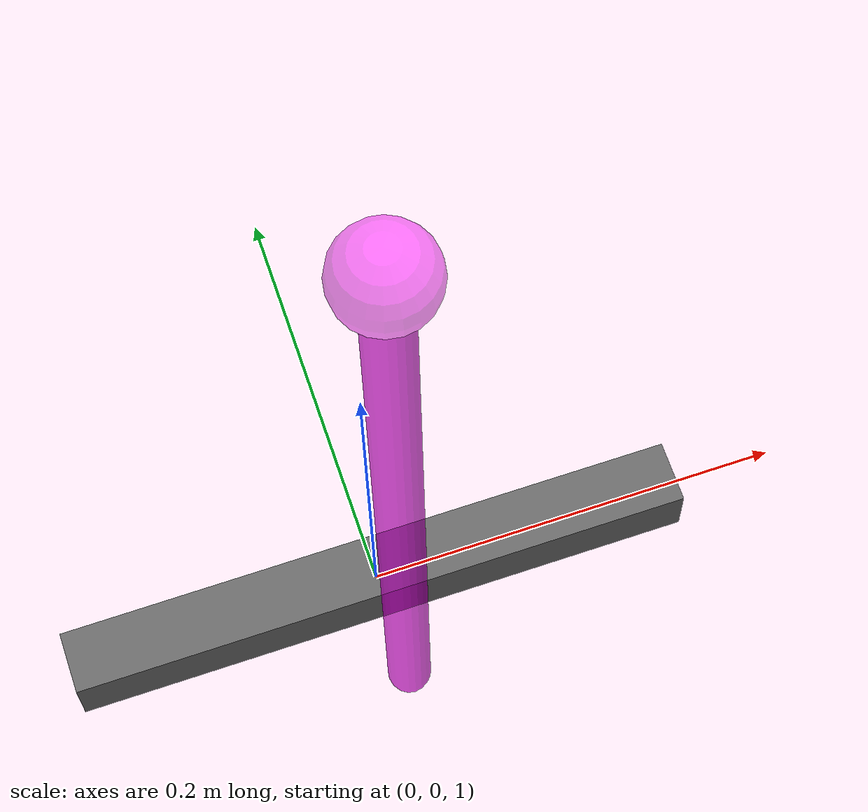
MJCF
<mujoco model="cartpole_sim_outer">
    <compiler inertiafromgeom="true" angle="degree"/>

    <asset>
      <texture type="skybox" builtin="gradient" rgb1=".0 .0 .0" rgb2="0. 0.0 .1" width="512" height="512"/>
      <texture name="body" type="cube" builtin="flat" mark="cross" width="127" height="1278"
               rgb1="0.4 0.4 0.4" rgb2="0.4 0.4 0.4" markrgb="0 0 0" random="0.01"/>
      <material name="body" texture="body" texuniform="true"/>
      <texture name="grid" type="2d" builtin="checker" width="512" height="512" rgb1=".6 .6 .6" rgb2=".9 .9 .9"/>
      <material name="grid" texture="grid" texrepeat="1 1" texuniform="true" reflectance=".2"/>
    </asset>

    <default>
        <joint limited="false" damping="1" armature="0"/>
        <geom type="capsule" condim="1" friction=".7" solimp=".9 .99 .003" solref=".015 1" material="body"/>
        <motor ctrlrange="-1. 1." ctrllimited="true"/>

        <default class="bearing">
            <joint pos="0 0 0" limited="false" damping="0.01" armature="0.01" type="hinge" axis="0 1 0"/>
            <geom pos="0 0 0" conaffinity="0" rgba="1 0 1 0.7" friction="0 0 0"/>
        </default>

        <default class="target_slider">
            <joint armature="10000" damping="10000" limited="true" pos="0 0 0" range="-1000 1000" ref=".1" stiffness="0" type="slide"/>
            <geom conaffinity="0" pos="0 0 0" rgba=" 1 0 1 0.5" size="0.005" type="sphere"/>
        </default>

    </default>

    <option timestep="0.005" iterations="50" tolerance="1e-10" solver="Newton" jacobian="dense" cone="pyramidal"/>

    <visual>
      <map force="0.1" zfar="30"/>
      <rgba haze="0.15 0.25 0.35 .1"/>
      <quality shadowsize="4096"/>
      <global offwidth="800" offheight="800"/>
    </visual>

    <worldbody>
        <geom name="floor" size="0 0 .05" type="plane" material="grid" condim="3"/>
        <light name="spotlight" mode="targetbodycom" target="torso"
               diffuse=".8 .8 .8" specular="0.3 0.3 0.3" pos="0 -20 4" cutoff="10"/>

        <light directional="false" diffuse=".2 .2 .2" specular="0 0 0" pos="0 0 5" dir="0 0 -1" castshadow="false"/>
        <light mode="targetbodycom" target="torso" directional="false" diffuse=".8 .8 .8" specular="0.3 0.3 0.3" pos="0 0 4.0" dir="0 0 -1"/>

        <body name="torso" pos="0 0 1.">
            <camera name="trackhorizontal" mode="trackcom" pos="0 -3 0.3" xyaxes="1 0 0 0 0 1"/>
            <joint type="slide" axis="1 0 0" name="cart" damping="10" armature="0.1" limited="false" range="-5 5"/>
            <geom type="box" size="0.15 0.015 0.015"/>
            <body name="lwaist" pos="0 -0.05 0">
                    <joint class="bearing" pos="0 0 0" axis="0 1 0" name="pole" limited="false" range="-45 45"/>
                    <geom class="bearing" pos="0 0 0.2" size="0.01 0.2" type="capsule" rgba="1 0 1 0.7" />
                    <body name="ball" pos="0 0 0.4">
                        <joint class="target_slider" axis="1 0 0" name="target_x"/>
                        <geom class="target_slider" name="target" size="0.02"/>
                        <site name="target_sensor_zone" rgba="1 0 1 0.7" size="0.01" type="sphere"/>
                    </body>
            </body>

        </body>
    </worldbody>

    <actuator>
        <motor name="motor1" gear="40" joint="cart" />
    </actuator>

    <sensor>
        <jointpos joint="pole" noise="0"/>
        <jointvel joint="pole" noise="0"/>
        <jointvel joint="cart" noise="0"/>
        <jointpos joint="cart" noise="0"/>
    </sensor>

</mujoco>
